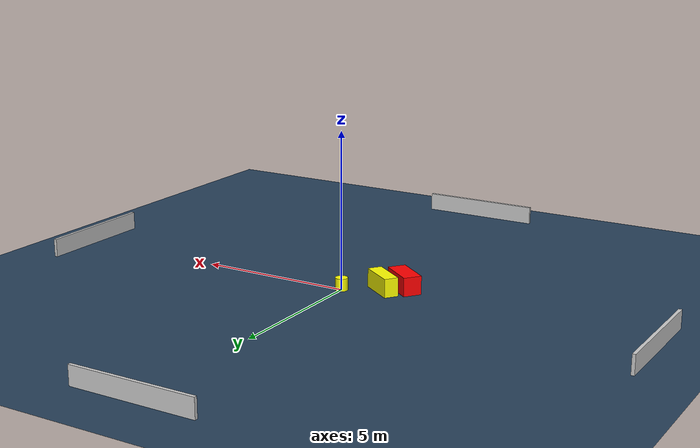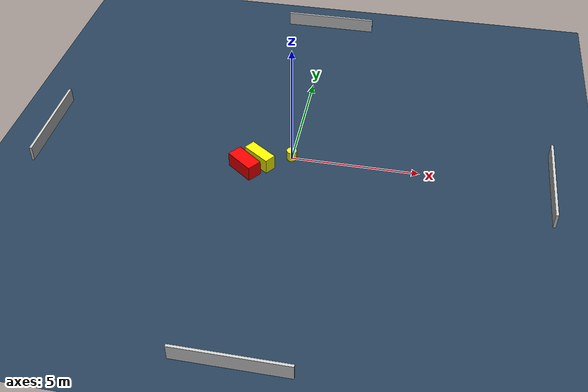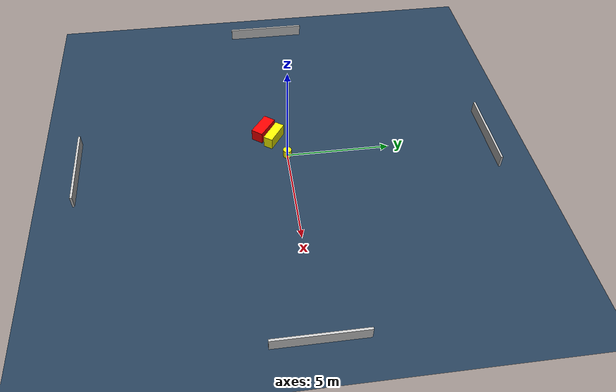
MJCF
<?xml version="1.0" ?>
<mujoco model="generated_environment">
  <option timestep="0.01" integrator="RK4" cone="elliptic"/>
  <default>
    <geom density="1"/>
  </default>
  <asset>
    <texture builtin="gradient" height="3072" name="skybox" rgb1="0.3 0.5 0.7" rgb2="0 0 0" type="skybox" width="512"/>
    <texture builtin="checker" height="300" name="groundplane" rgb1="0.2 0.3 0.4" rgb2="0.1 0.2 0.3" type="2d" width="300"/>
    <material name="groundplane" reflectance="0.2" texrepeat="5 5" texture="groundplane"/>
  </asset>
  <worldbody>
    <light dir="0 0 -1" directional="true" pos="0 0 1.5"/>
    <geom condim="3" friction="0.5 0.005 0.001" material="groundplane" name="floor" pos="0 0 0" size="0 0 0.05" type="plane"/>
    <body name="walls">
      <geom name="wall_1" condim="4" pos="-10.0 0.0 0.3" rgba="0.800000011920929 0.800000011920929 0.800000011920929 1.0" size="0.05 2.0 0.3" type="box"/>
      <geom name="wall_2" condim="4" pos="10.0 0.0 0.3" rgba="0.800000011920929 0.800000011920929 0.800000011920929 1.0" size="0.05 2.0 0.3" type="box"/>
      <geom name="wall_3" condim="4" pos="0.0 -10.0 0.3" rgba="0.800000011920929 0.800000011920929 0.800000011920929 1.0" size="2.0 0.05 0.3" type="box"/>
      <geom name="wall_4" condim="4" pos="0.0 10.0 0.3" rgba="0.800000011920929 0.800000011920929 0.800000011920929 1.0" size="2.0 0.05 0.3" type="box"/>
    </body>
    <body name="robot">
      <joint name="joint_x" type="slide" pos="0 0 0" axis="1 0 0"/>
      <joint name="joint_y" type="slide" pos="0 0 0" axis="0 1 0"/>
      <geom name="robot" type="cylinder" pos="0.0 0.0 0.2" size="0.2 0.2 0.0" mass="5.0" friction="1.0 0.005 0.0001" condim="4" rgba="1.0 1.0 0.0 1.0"/>
    </body>
    <body name="obstacle_1_movable">
      <geom name="obstacle_1_movable" condim="4" pos="-1.1691422918039878 -0.5220724708346247 0.3" euler="0 0 324.71069649988544" friction="0.0 0.005 0.001" rgba="1.0 1.0 0.0 1.0" size="0.6064607717115982 0.22869984212700517 0.3" type="box" mass="0.1"/>
      <joint type="free"/>
    </body>
    <body name="obstacle_2_static">
      <geom name="obstacle_2_static" condim="4" pos="-1.6691260919342912 -0.9940938986238378 0.3" euler="0 0 232.60049853252377" friction="0.0 0.005 0.001" rgba="1.0 0.0 0.0 1.0" size="0.29384918434906787 0.6082242128190132 0.3" type="box"/>
    </body>
  </worldbody>
  <actuator>
    <motor name="actuator_x" joint="joint_x" gear="1" ctrlrange="-1 1"/>
    <motor name="actuator_y" joint="joint_y" gear="1" ctrlrange="-1 1"/>
  </actuator>
</mujoco>
